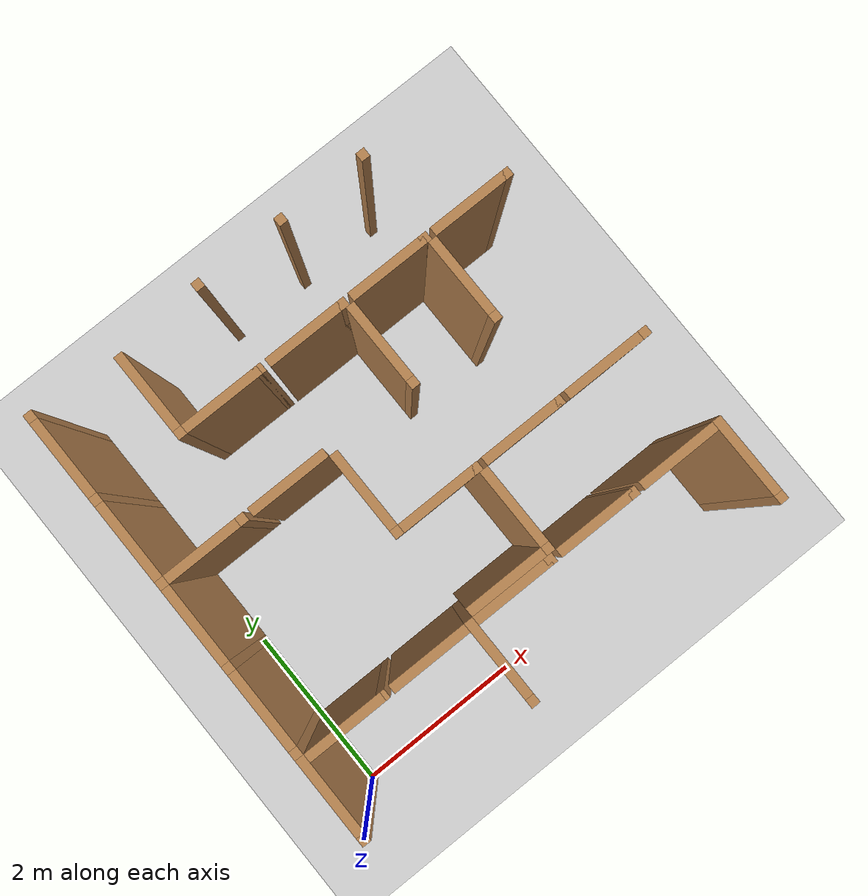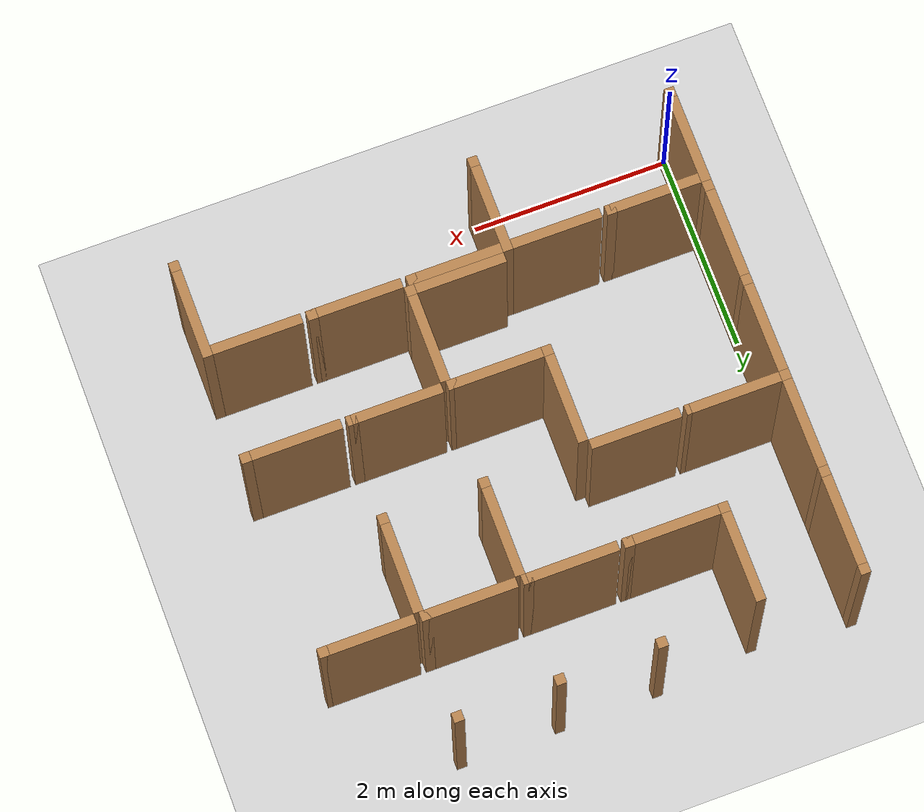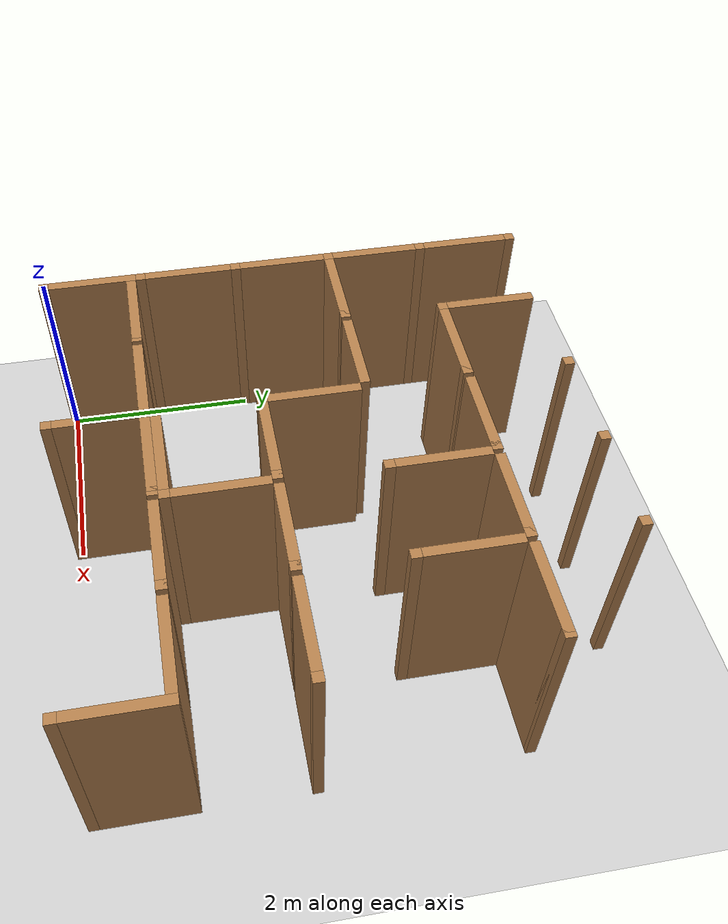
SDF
<sdf version="1.6">
 <world name="default">
  <include><uri>model://sun</uri></include>
  <model name="ground_plane">
   <static>true</static>
   <link name="link">
    <collision name="collision"><geometry><plane><size>12.0 12.0</size></plane></geometry></collision>
    <visual name="visual">
     <cast_shadows>false</cast_shadows>
     <geometry><plane><size>12.0 12.0</size></plane></geometry>
     <material>
      <script><uri>file://media/materials/scripts/gazebo.material</uri><name>Gazebo/Grey</name></script>
     </material>
    </visual>
   </link>
   <pose>6.0 6.0 0 0 0 0</pose>
  </model>
  <model name="vwall_0_0">
   <pose>0.0 0.5 1.0 0 0 0</pose>
   <link name="link">
    <collision name="collision"><geometry><box><size>0.1 0.9 2</size></box></geometry></collision>
    <visual name="visual">
     <geometry><box><size>0.1 0.9 2</size></box></geometry>
     <material>
      <script><uri>file://media/materials/scripts/gazebo.material</uri><name>Gazebo/Wood</name></script>
     </material>
    </visual>
   </link>
  </model>
  <model name="joint_0.0_0.0">
   <pose>0.0 0.0 1.0 0 0 0</pose>
   <link name="link">
    <collision name="collision"><geometry><box><size>0.1 0.1 2</size></box></geometry></collision>
    <visual name="visual">
     <geometry><box><size>0.1 0.1 2</size></box></geometry>
     <material>
      <script><uri>file://media/materials/scripts/gazebo.material</uri><name>Gazebo/Wood</name></script>
     </material>
    </visual>
   </link>
  </model>
  <model name="vwall_0_2">
   <pose>2.0 0.5 1.0 0 0 0</pose>
   <link name="link">
    <collision name="collision"><geometry><box><size>0.1 0.9 2</size></box></geometry></collision>
    <visual name="visual">
     <geometry><box><size>0.1 0.9 2</size></box></geometry>
     <material>
      <script><uri>file://media/materials/scripts/gazebo.material</uri><name>Gazebo/Wood</name></script>
     </material>
    </visual>
   </link>
  </model>
  <model name="joint_2.0_0.0">
   <pose>2.0 0.0 1.0 0 0 0</pose>
   <link name="link">
    <collision name="collision"><geometry><box><size>0.1 0.1 2</size></box></geometry></collision>
    <visual name="visual">
     <geometry><box><size>0.1 0.1 2</size></box></geometry>
     <material>
      <script><uri>file://media/materials/scripts/gazebo.material</uri><name>Gazebo/Wood</name></script>
     </material>
    </visual>
   </link>
  </model>
  <model name="vwall_0_5">
   <pose>5.0 0.5 1.0 0 0 0</pose>
   <link name="link">
    <collision name="collision"><geometry><box><size>0.1 0.9 2</size></box></geometry></collision>
    <visual name="visual">
     <geometry><box><size>0.1 0.9 2</size></box></geometry>
     <material>
      <script><uri>file://media/materials/scripts/gazebo.material</uri><name>Gazebo/Wood</name></script>
     </material>
    </visual>
   </link>
  </model>
  <model name="joint_5.0_0.0">
   <pose>5.0 0.0 1.0 0 0 0</pose>
   <link name="link">
    <collision name="collision"><geometry><box><size>0.1 0.1 2</size></box></geometry></collision>
    <visual name="visual">
     <geometry><box><size>0.1 0.1 2</size></box></geometry>
     <material>
      <script><uri>file://media/materials/scripts/gazebo.material</uri><name>Gazebo/Wood</name></script>
     </material>
    </visual>
   </link>
  </model>
  <model name="vwall_1_0">
   <pose>0.0 1.5 1.0 0 0 0</pose>
   <link name="link">
    <collision name="collision"><geometry><box><size>0.1 0.9 2</size></box></geometry></collision>
    <visual name="visual">
     <geometry><box><size>0.1 0.9 2</size></box></geometry>
     <material>
      <script><uri>file://media/materials/scripts/gazebo.material</uri><name>Gazebo/Wood</name></script>
     </material>
    </visual>
   </link>
  </model>
  <model name="joint_0.0_1.0">
   <pose>0.0 1.0 1.0 0 0 0</pose>
   <link name="link">
    <collision name="collision"><geometry><box><size>0.1 0.1 2</size></box></geometry></collision>
    <visual name="visual">
     <geometry><box><size>0.1 0.1 2</size></box></geometry>
     <material>
      <script><uri>file://media/materials/scripts/gazebo.material</uri><name>Gazebo/Wood</name></script>
     </material>
    </visual>
   </link>
  </model>
  <model name="vwall_1_3">
   <pose>3.0 1.5 1.0 0 0 0</pose>
   <link name="link">
    <collision name="collision"><geometry><box><size>0.1 0.9 2</size></box></geometry></collision>
    <visual name="visual">
     <geometry><box><size>0.1 0.9 2</size></box></geometry>
     <material>
      <script><uri>file://media/materials/scripts/gazebo.material</uri><name>Gazebo/Wood</name></script>
     </material>
    </visual>
   </link>
  </model>
  <model name="joint_3.0_1.0">
   <pose>3.0 1.0 1.0 0 0 0</pose>
   <link name="link">
    <collision name="collision"><geometry><box><size>0.1 0.1 2</size></box></geometry></collision>
    <visual name="visual">
     <geometry><box><size>0.1 0.1 2</size></box></geometry>
     <material>
      <script><uri>file://media/materials/scripts/gazebo.material</uri><name>Gazebo/Wood</name></script>
     </material>
    </visual>
   </link>
  </model>
  <model name="vwall_2_0">
   <pose>0.0 2.5 1.0 0 0 0</pose>
   <link name="link">
    <collision name="collision"><geometry><box><size>0.1 0.9 2</size></box></geometry></collision>
    <visual name="visual">
     <geometry><box><size>0.1 0.9 2</size></box></geometry>
     <material>
      <script><uri>file://media/materials/scripts/gazebo.material</uri><name>Gazebo/Wood</name></script>
     </material>
    </visual>
   </link>
  </model>
  <model name="joint_0.0_2.0">
   <pose>0.0 2.0 1.0 0 0 0</pose>
   <link name="link">
    <collision name="collision"><geometry><box><size>0.1 0.1 2</size></box></geometry></collision>
    <visual name="visual">
     <geometry><box><size>0.1 0.1 2</size></box></geometry>
     <material>
      <script><uri>file://media/materials/scripts/gazebo.material</uri><name>Gazebo/Wood</name></script>
     </material>
    </visual>
   </link>
  </model>
  <model name="vwall_2_2">
   <pose>2.0 2.5 1.0 0 0 0</pose>
   <link name="link">
    <collision name="collision"><geometry><box><size>0.1 0.9 2</size></box></geometry></collision>
    <visual name="visual">
     <geometry><box><size>0.1 0.9 2</size></box></geometry>
     <material>
      <script><uri>file://media/materials/scripts/gazebo.material</uri><name>Gazebo/Wood</name></script>
     </material>
    </visual>
   </link>
  </model>
  <model name="joint_2.0_2.0">
   <pose>2.0 2.0 1.0 0 0 0</pose>
   <link name="link">
    <collision name="collision"><geometry><box><size>0.1 0.1 2</size></box></geometry></collision>
    <visual name="visual">
     <geometry><box><size>0.1 0.1 2</size></box></geometry>
     <material>
      <script><uri>file://media/materials/scripts/gazebo.material</uri><name>Gazebo/Wood</name></script>
     </material>
    </visual>
   </link>
  </model>
  <model name="joint_5.0_2.0">
   <pose>5.0 2.0 1.0 0 0 0</pose>
   <link name="link">
    <collision name="collision"><geometry><box><size>0.1 0.1 2</size></box></geometry></collision>
    <visual name="visual">
     <geometry><box><size>0.1 0.1 2</size></box></geometry>
     <material>
      <script><uri>file://media/materials/scripts/gazebo.material</uri><name>Gazebo/Wood</name></script>
     </material>
    </visual>
   </link>
  </model>
  <model name="vwall_3_0">
   <pose>0.0 3.5 1.0 0 0 0</pose>
   <link name="link">
    <collision name="collision"><geometry><box><size>0.1 0.9 2</size></box></geometry></collision>
    <visual name="visual">
     <geometry><box><size>0.1 0.9 2</size></box></geometry>
     <material>
      <script><uri>file://media/materials/scripts/gazebo.material</uri><name>Gazebo/Wood</name></script>
     </material>
    </visual>
   </link>
  </model>
  <model name="joint_0.0_3.0">
   <pose>0.0 3.0 1.0 0 0 0</pose>
   <link name="link">
    <collision name="collision"><geometry><box><size>0.1 0.1 2</size></box></geometry></collision>
    <visual name="visual">
     <geometry><box><size>0.1 0.1 2</size></box></geometry>
     <material>
      <script><uri>file://media/materials/scripts/gazebo.material</uri><name>Gazebo/Wood</name></script>
     </material>
    </visual>
   </link>
  </model>
  <model name="vwall_3_3">
   <pose>3.0 3.5 1.0 0 0 0</pose>
   <link name="link">
    <collision name="collision"><geometry><box><size>0.1 0.9 2</size></box></geometry></collision>
    <visual name="visual">
     <geometry><box><size>0.1 0.9 2</size></box></geometry>
     <material>
      <script><uri>file://media/materials/scripts/gazebo.material</uri><name>Gazebo/Wood</name></script>
     </material>
    </visual>
   </link>
  </model>
  <model name="joint_3.0_3.0">
   <pose>3.0 3.0 1.0 0 0 0</pose>
   <link name="link">
    <collision name="collision"><geometry><box><size>0.1 0.1 2</size></box></geometry></collision>
    <visual name="visual">
     <geometry><box><size>0.1 0.1 2</size></box></geometry>
     <material>
      <script><uri>file://media/materials/scripts/gazebo.material</uri><name>Gazebo/Wood</name></script>
     </material>
    </visual>
   </link>
  </model>
  <model name="vwall_3_4">
   <pose>4.0 3.5 1.0 0 0 0</pose>
   <link name="link">
    <collision name="collision"><geometry><box><size>0.1 0.9 2</size></box></geometry></collision>
    <visual name="visual">
     <geometry><box><size>0.1 0.9 2</size></box></geometry>
     <material>
      <script><uri>file://media/materials/scripts/gazebo.material</uri><name>Gazebo/Wood</name></script>
     </material>
    </visual>
   </link>
  </model>
  <model name="joint_4.0_3.0">
   <pose>4.0 3.0 1.0 0 0 0</pose>
   <link name="link">
    <collision name="collision"><geometry><box><size>0.1 0.1 2</size></box></geometry></collision>
    <visual name="visual">
     <geometry><box><size>0.1 0.1 2</size></box></geometry>
     <material>
      <script><uri>file://media/materials/scripts/gazebo.material</uri><name>Gazebo/Wood</name></script>
     </material>
    </visual>
   </link>
  </model>
  <model name="vwall_4_0">
   <pose>0.0 4.5 1.0 0 0 0</pose>
   <link name="link">
    <collision name="collision"><geometry><box><size>0.1 0.9 2</size></box></geometry></collision>
    <visual name="visual">
     <geometry><box><size>0.1 0.9 2</size></box></geometry>
     <material>
      <script><uri>file://media/materials/scripts/gazebo.material</uri><name>Gazebo/Wood</name></script>
     </material>
    </visual>
   </link>
  </model>
  <model name="joint_0.0_4.0">
   <pose>0.0 4.0 1.0 0 0 0</pose>
   <link name="link">
    <collision name="collision"><geometry><box><size>0.1 0.1 2</size></box></geometry></collision>
    <visual name="visual">
     <geometry><box><size>0.1 0.1 2</size></box></geometry>
     <material>
      <script><uri>file://media/materials/scripts/gazebo.material</uri><name>Gazebo/Wood</name></script>
     </material>
    </visual>
   </link>
  </model>
  <model name="vwall_4_1">
   <pose>1.0 4.5 1.0 0 0 0</pose>
   <link name="link">
    <collision name="collision"><geometry><box><size>0.1 0.9 2</size></box></geometry></collision>
    <visual name="visual">
     <geometry><box><size>0.1 0.9 2</size></box></geometry>
     <material>
      <script><uri>file://media/materials/scripts/gazebo.material</uri><name>Gazebo/Wood</name></script>
     </material>
    </visual>
   </link>
  </model>
  <model name="joint_1.0_4.0">
   <pose>1.0 4.0 1.0 0 0 0</pose>
   <link name="link">
    <collision name="collision"><geometry><box><size>0.1 0.1 2</size></box></geometry></collision>
    <visual name="visual">
     <geometry><box><size>0.1 0.1 2</size></box></geometry>
     <material>
      <script><uri>file://media/materials/scripts/gazebo.material</uri><name>Gazebo/Wood</name></script>
     </material>
    </visual>
   </link>
  </model>
  <model name="joint_0.0_5.0">
   <pose>0.0 5.0 1.0 0 0 0</pose>
   <link name="link">
    <collision name="collision"><geometry><box><size>0.1 0.1 2</size></box></geometry></collision>
    <visual name="visual">
     <geometry><box><size>0.1 0.1 2</size></box></geometry>
     <material>
      <script><uri>file://media/materials/scripts/gazebo.material</uri><name>Gazebo/Wood</name></script>
     </material>
    </visual>
   </link>
  </model>
  <model name="joint_2.0_5.0">
   <pose>2.0 5.0 1.0 0 0 0</pose>
   <link name="link">
    <collision name="collision"><geometry><box><size>0.1 0.1 2</size></box></geometry></collision>
    <visual name="visual">
     <geometry><box><size>0.1 0.1 2</size></box></geometry>
     <material>
      <script><uri>file://media/materials/scripts/gazebo.material</uri><name>Gazebo/Wood</name></script>
     </material>
    </visual>
   </link>
  </model>
  <model name="joint_3.0_5.0">
   <pose>3.0 5.0 1.0 0 0 0</pose>
   <link name="link">
    <collision name="collision"><geometry><box><size>0.1 0.1 2</size></box></geometry></collision>
    <visual name="visual">
     <geometry><box><size>0.1 0.1 2</size></box></geometry>
     <material>
      <script><uri>file://media/materials/scripts/gazebo.material</uri><name>Gazebo/Wood</name></script>
     </material>
    </visual>
   </link>
  </model>
  <model name="joint_4.0_5.0">
   <pose>4.0 5.0 1.0 0 0 0</pose>
   <link name="link">
    <collision name="collision"><geometry><box><size>0.1 0.1 2</size></box></geometry></collision>
    <visual name="visual">
     <geometry><box><size>0.1 0.1 2</size></box></geometry>
     <material>
      <script><uri>file://media/materials/scripts/gazebo.material</uri><name>Gazebo/Wood</name></script>
     </material>
    </visual>
   </link>
  </model>
  <model name="hwall_0_0">
   <pose>0.5 0.9 1.0 0 0 0</pose>
   <link name="link">
    <collision name="collision"><geometry><box><size>0.9 0.1 2</size></box></geometry></collision>
    <visual name="visual">
     <geometry><box><size>0.9 0.1 2</size></box></geometry>
     <material>
      <script><uri>file://media/materials/scripts/gazebo.material</uri><name>Gazebo/Wood</name></script>
     </material>
    </visual>
   </link>
  </model>
  <model name="joint_0.95_0.9">
   <pose>0.95 0.9 1.0 0 0 0</pose>
   <link name="link">
    <collision name="collision"><geometry><box><size>0.1 0.1 2</size></box></geometry></collision>
    <visual name="visual">
     <geometry><box><size>0.1 0.1 2</size></box></geometry>
     <material>
      <script><uri>file://media/materials/scripts/gazebo.material</uri><name>Gazebo/Wood</name></script>
     </material>
    </visual>
   </link>
  </model>
  <model name="hwall_0_1">
   <pose>1.5 0.9 1.0 0 0 0</pose>
   <link name="link">
    <collision name="collision"><geometry><box><size>0.9 0.1 2</size></box></geometry></collision>
    <visual name="visual">
     <geometry><box><size>0.9 0.1 2</size></box></geometry>
     <material>
      <script><uri>file://media/materials/scripts/gazebo.material</uri><name>Gazebo/Wood</name></script>
     </material>
    </visual>
   </link>
  </model>
  <model name="hwall_0_2">
   <pose>2.5 0.9 1.0 0 0 0</pose>
   <link name="link">
    <collision name="collision"><geometry><box><size>0.9 0.1 2</size></box></geometry></collision>
    <visual name="visual">
     <geometry><box><size>0.9 0.1 2</size></box></geometry>
     <material>
      <script><uri>file://media/materials/scripts/gazebo.material</uri><name>Gazebo/Wood</name></script>
     </material>
    </visual>
   </link>
  </model>
  <model name="joint_2.95_0.9">
   <pose>2.95 0.9 1.0 0 0 0</pose>
   <link name="link">
    <collision name="collision"><geometry><box><size>0.1 0.1 2</size></box></geometry></collision>
    <visual name="visual">
     <geometry><box><size>0.1 0.1 2</size></box></geometry>
     <material>
      <script><uri>file://media/materials/scripts/gazebo.material</uri><name>Gazebo/Wood</name></script>
     </material>
    </visual>
   </link>
  </model>
  <model name="hwall_0_3">
   <pose>3.5 0.9 1.0 0 0 0</pose>
   <link name="link">
    <collision name="collision"><geometry><box><size>0.9 0.1 2</size></box></geometry></collision>
    <visual name="visual">
     <geometry><box><size>0.9 0.1 2</size></box></geometry>
     <material>
      <script><uri>file://media/materials/scripts/gazebo.material</uri><name>Gazebo/Wood</name></script>
     </material>
    </visual>
   </link>
  </model>
  <model name="joint_3.95_0.9">
   <pose>3.95 0.9 1.0 0 0 0</pose>
   <link name="link">
    <collision name="collision"><geometry><box><size>0.1 0.1 2</size></box></geometry></collision>
    <visual name="visual">
     <geometry><box><size>0.1 0.1 2</size></box></geometry>
     <material>
      <script><uri>file://media/materials/scripts/gazebo.material</uri><name>Gazebo/Wood</name></script>
     </material>
    </visual>
   </link>
  </model>
  <model name="hwall_0_4">
   <pose>4.5 0.9 1.0 0 0 0</pose>
   <link name="link">
    <collision name="collision"><geometry><box><size>0.9 0.1 2</size></box></geometry></collision>
    <visual name="visual">
     <geometry><box><size>0.9 0.1 2</size></box></geometry>
     <material>
      <script><uri>file://media/materials/scripts/gazebo.material</uri><name>Gazebo/Wood</name></script>
     </material>
    </visual>
   </link>
  </model>
  <model name="hwall_1_2">
   <pose>2.5 1.0 1.0 0 0 0</pose>
   <link name="link">
    <collision name="collision"><geometry><box><size>0.9 0.1 2</size></box></geometry></collision>
    <visual name="visual">
     <geometry><box><size>0.9 0.1 2</size></box></geometry>
     <material>
      <script><uri>file://media/materials/scripts/gazebo.material</uri><name>Gazebo/Wood</name></script>
     </material>
    </visual>
   </link>
  </model>
  <model name="hwall_2_2">
   <pose>2.5 2.0 1.0 0 0 0</pose>
   <link name="link">
    <collision name="collision"><geometry><box><size>0.9 0.1 2</size></box></geometry></collision>
    <visual name="visual">
     <geometry><box><size>0.9 0.1 2</size></box></geometry>
     <material>
      <script><uri>file://media/materials/scripts/gazebo.material</uri><name>Gazebo/Wood</name></script>
     </material>
    </visual>
   </link>
  </model>
  <model name="joint_2.95_2.0">
   <pose>2.95 2.0 1.0 0 0 0</pose>
   <link name="link">
    <collision name="collision"><geometry><box><size>0.1 0.1 2</size></box></geometry></collision>
    <visual name="visual">
     <geometry><box><size>0.1 0.1 2</size></box></geometry>
     <material>
      <script><uri>file://media/materials/scripts/gazebo.material</uri><name>Gazebo/Wood</name></script>
     </material>
    </visual>
   </link>
  </model>
  <model name="hwall_2_3">
   <pose>3.5 2.0 1.0 0 0 0</pose>
   <link name="link">
    <collision name="collision"><geometry><box><size>0.9 0.1 2</size></box></geometry></collision>
    <visual name="visual">
     <geometry><box><size>0.9 0.1 2</size></box></geometry>
     <material>
      <script><uri>file://media/materials/scripts/gazebo.material</uri><name>Gazebo/Wood</name></script>
     </material>
    </visual>
   </link>
  </model>
  <model name="joint_3.95_2.0">
   <pose>3.95 2.0 1.0 0 0 0</pose>
   <link name="link">
    <collision name="collision"><geometry><box><size>0.1 0.1 2</size></box></geometry></collision>
    <visual name="visual">
     <geometry><box><size>0.1 0.1 2</size></box></geometry>
     <material>
      <script><uri>file://media/materials/scripts/gazebo.material</uri><name>Gazebo/Wood</name></script>
     </material>
    </visual>
   </link>
  </model>
  <model name="hwall_2_4">
   <pose>4.5 2.0 1.0 0 0 0</pose>
   <link name="link">
    <collision name="collision"><geometry><box><size>0.9 0.1 2</size></box></geometry></collision>
    <visual name="visual">
     <geometry><box><size>0.9 0.1 2</size></box></geometry>
     <material>
      <script><uri>file://media/materials/scripts/gazebo.material</uri><name>Gazebo/Wood</name></script>
     </material>
    </visual>
   </link>
  </model>
  <model name="hwall_3_0">
   <pose>0.5 3.0 1.0 0 0 0</pose>
   <link name="link">
    <collision name="collision"><geometry><box><size>0.9 0.1 2</size></box></geometry></collision>
    <visual name="visual">
     <geometry><box><size>0.9 0.1 2</size></box></geometry>
     <material>
      <script><uri>file://media/materials/scripts/gazebo.material</uri><name>Gazebo/Wood</name></script>
     </material>
    </visual>
   </link>
  </model>
  <model name="joint_0.95_3.0">
   <pose>0.95 3.0 1.0 0 0 0</pose>
   <link name="link">
    <collision name="collision"><geometry><box><size>0.1 0.1 2</size></box></geometry></collision>
    <visual name="visual">
     <geometry><box><size>0.1 0.1 2</size></box></geometry>
     <material>
      <script><uri>file://media/materials/scripts/gazebo.material</uri><name>Gazebo/Wood</name></script>
     </material>
    </visual>
   </link>
  </model>
  <model name="hwall_3_1">
   <pose>1.5 3.0 1.0 0 0 0</pose>
   <link name="link">
    <collision name="collision"><geometry><box><size>0.9 0.1 2</size></box></geometry></collision>
    <visual name="visual">
     <geometry><box><size>0.9 0.1 2</size></box></geometry>
     <material>
      <script><uri>file://media/materials/scripts/gazebo.material</uri><name>Gazebo/Wood</name></script>
     </material>
    </visual>
   </link>
  </model>
  <model name="hwall_4_1">
   <pose>1.5 4.0 1.0 0 0 0</pose>
   <link name="link">
    <collision name="collision"><geometry><box><size>0.9 0.1 2</size></box></geometry></collision>
    <visual name="visual">
     <geometry><box><size>0.9 0.1 2</size></box></geometry>
     <material>
      <script><uri>file://media/materials/scripts/gazebo.material</uri><name>Gazebo/Wood</name></script>
     </material>
    </visual>
   </link>
  </model>
  <model name="joint_1.95_4.0">
   <pose>1.95 4.0 1.0 0 0 0</pose>
   <link name="link">
    <collision name="collision"><geometry><box><size>0.1 0.1 2</size></box></geometry></collision>
    <visual name="visual">
     <geometry><box><size>0.1 0.1 2</size></box></geometry>
     <material>
      <script><uri>file://media/materials/scripts/gazebo.material</uri><name>Gazebo/Wood</name></script>
     </material>
    </visual>
   </link>
  </model>
  <model name="hwall_4_2">
   <pose>2.5 4.0 1.0 0 0 0</pose>
   <link name="link">
    <collision name="collision"><geometry><box><size>0.9 0.1 2</size></box></geometry></collision>
    <visual name="visual">
     <geometry><box><size>0.9 0.1 2</size></box></geometry>
     <material>
      <script><uri>file://media/materials/scripts/gazebo.material</uri><name>Gazebo/Wood</name></script>
     </material>
    </visual>
   </link>
  </model>
  <model name="joint_2.95_4.0">
   <pose>2.95 4.0 1.0 0 0 0</pose>
   <link name="link">
    <collision name="collision"><geometry><box><size>0.1 0.1 2</size></box></geometry></collision>
    <visual name="visual">
     <geometry><box><size>0.1 0.1 2</size></box></geometry>
     <material>
      <script><uri>file://media/materials/scripts/gazebo.material</uri><name>Gazebo/Wood</name></script>
     </material>
    </visual>
   </link>
  </model>
  <model name="hwall_4_3">
   <pose>3.5 4.0 1.0 0 0 0</pose>
   <link name="link">
    <collision name="collision"><geometry><box><size>0.9 0.1 2</size></box></geometry></collision>
    <visual name="visual">
     <geometry><box><size>0.9 0.1 2</size></box></geometry>
     <material>
      <script><uri>file://media/materials/scripts/gazebo.material</uri><name>Gazebo/Wood</name></script>
     </material>
    </visual>
   </link>
  </model>
  <model name="joint_3.95_4.0">
   <pose>3.95 4.0 1.0 0 0 0</pose>
   <link name="link">
    <collision name="collision"><geometry><box><size>0.1 0.1 2</size></box></geometry></collision>
    <visual name="visual">
     <geometry><box><size>0.1 0.1 2</size></box></geometry>
     <material>
      <script><uri>file://media/materials/scripts/gazebo.material</uri><name>Gazebo/Wood</name></script>
     </material>
    </visual>
   </link>
  </model>
  <model name="hwall_4_4">
   <pose>4.5 4.0 1.0 0 0 0</pose>
   <link name="link">
    <collision name="collision"><geometry><box><size>0.9 0.1 2</size></box></geometry></collision>
    <visual name="visual">
     <geometry><box><size>0.9 0.1 2</size></box></geometry>
     <material>
      <script><uri>file://media/materials/scripts/gazebo.material</uri><name>Gazebo/Wood</name></script>
     </material>
    </visual>
   </link>
  </model>
  <model name="joint_4.95_4.0">
   <pose>4.95 4.0 1.0 0 0 0</pose>
   <link name="link">
    <collision name="collision"><geometry><box><size>0.1 0.1 2</size></box></geometry></collision>
    <visual name="visual">
     <geometry><box><size>0.1 0.1 2</size></box></geometry>
     <material>
      <script><uri>file://media/materials/scripts/gazebo.material</uri><name>Gazebo/Wood</name></script>
     </material>
    </visual>
   </link>
  </model>
 </world>
</sdf>
